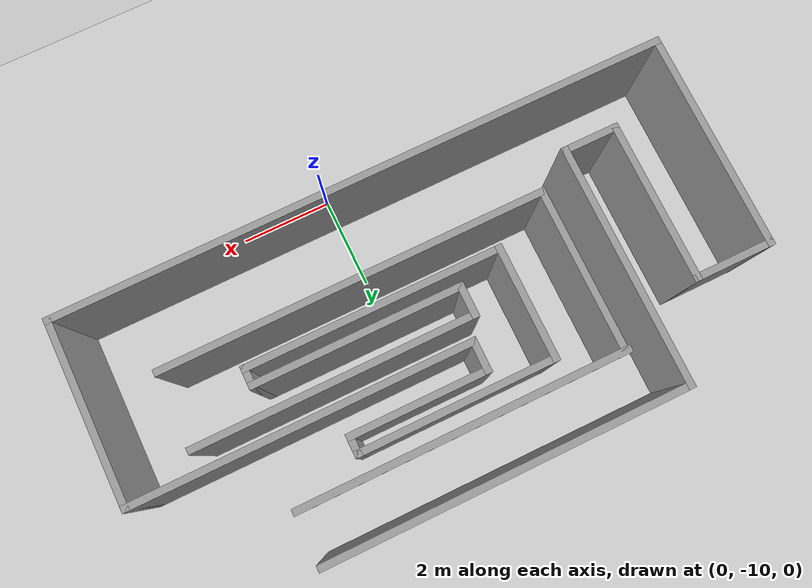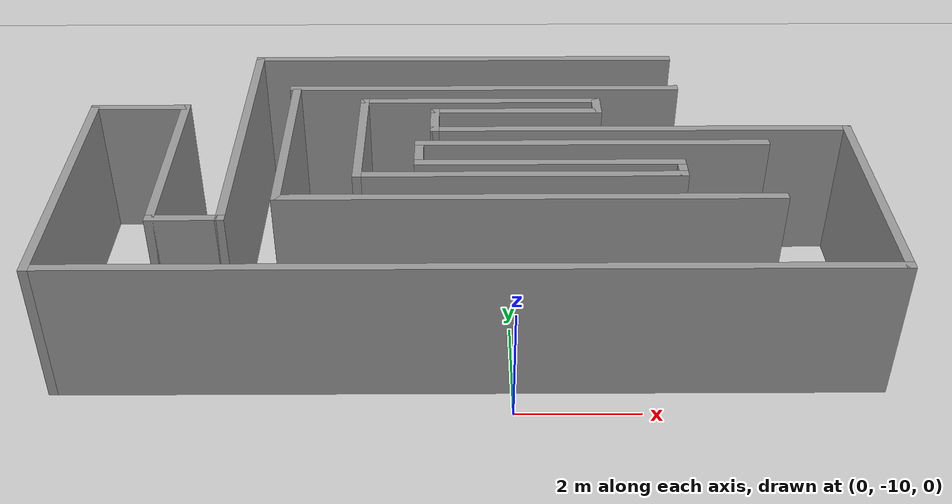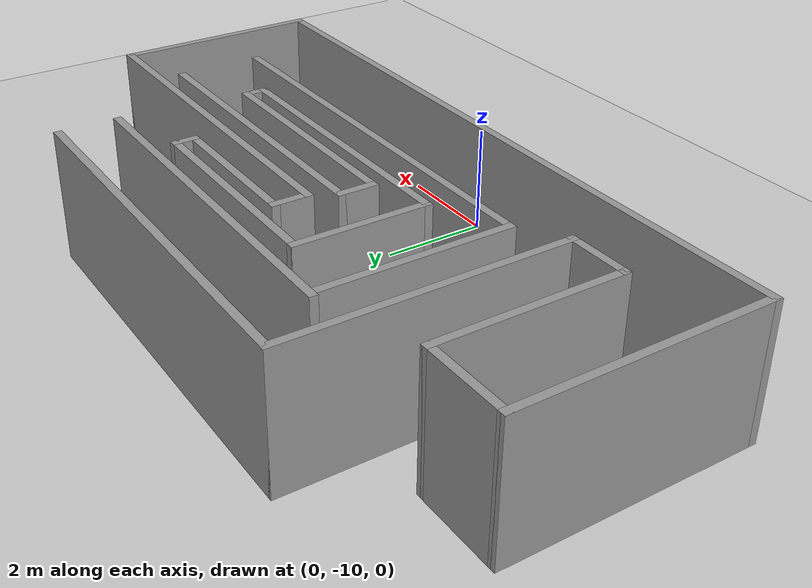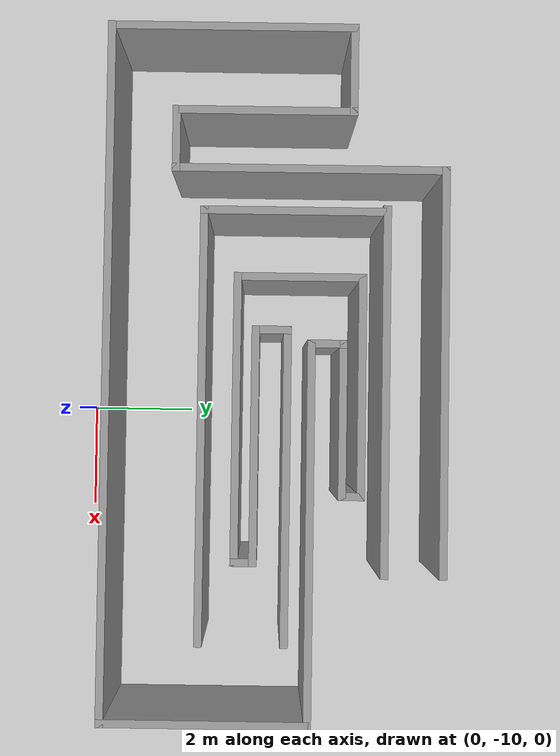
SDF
<sdf version="1.7">
 <world name="default">
  <light name="sun" type="directional">
   <pose>0 0 10 0 -0 0</pose>
   <diffuse>0.8 0.8 0.8 1</diffuse>
   <specular>0.2 0.2 0.2 1</specular>
   <attenuation>
    <range>1000</range>
    <constant>0.9</constant>
    <linear>0.01</linear>
    <quadratic>0.001</quadratic>
   </attenuation>
   <direction>-0.5 0.1 -0.9</direction>
   <spot><inner_angle>0</inner_angle><outer_angle>0</outer_angle><falloff>0</falloff></spot>
  </light>
  <model name="ground_plane">
   <static>1</static>
   <link name="link">
    <collision name="collision">
     <geometry><plane><normal>0 0 1</normal><size>100 100</size></plane></geometry>
     <surface>
      <contact><collide_bitmask>65535</collide_bitmask></contact>
      <friction><ode><mu>100</mu><mu2>50</mu2></ode></friction>
     </surface>
    </collision>
    <visual name="visual">
     <cast_shadows>0</cast_shadows>
     <geometry><plane><normal>0 0 1</normal><size>100 100</size></plane></geometry>
     <material>
      <script><uri>file://media/materials/scripts/gazebo.material</uri><name>Gazebo/Grey</name></script>
     </material>
    </visual>
   </link>
  </model>
  <gravity>0 0 -9.8</gravity>
  <magnetic_field>6e-06 2.3e-05 -4.2e-05</magnetic_field>
  <atmosphere type="adiabatic"/>
  <physics type="ode">
   <max_step_size>0.001</max_step_size>
   <real_time_factor>1</real_time_factor>
   <real_time_update_rate>1000</real_time_update_rate>
  </physics>
  <scene><ambient>0.4 0.4 0.4 1</ambient><background>0.7 0.7 0.7 1</background><shadows>1</shadows></scene>
  <spherical_coordinates>
   <surface_model>EARTH_WGS84</surface_model>
   <latitude_deg>0</latitude_deg>
   <longitude_deg>0</longitude_deg>
   <elevation>0</elevation>
   <heading_deg>0</heading_deg>
  </spherical_coordinates>
  <model name="maze_map">
   <pose>-0.71 -6.28332 0 0 -0 0</pose>
   <link name="Wall_0">
    <collision name="Wall_0_Collision">
     <geometry><box><size>3.5 0.15 2.5</size></box></geometry>
     <pose>0 0 1.25 0 -0 0</pose>
    </collision>
    <visual name="Wall_0_Visual">
     <pose>0 0 1.25 0 -0 0</pose>
     <geometry><box><size>3.5 0.15 2.5</size></box></geometry>
     <material>
      <script><uri>file://media/materials/scripts/gazebo.material</uri><name>Gazebo/Grey</name></script>
      <ambient>1 1 1 1</ambient>
     </material>
     <meta><layer>0</layer></meta>
    </visual>
    <pose>-3.05 0.3 0 0 -0 -1.5708</pose>
   </link>
   <link name="Wall_1">
    <collision name="Wall_1_Collision">
     <geometry><box><size>8.25 0.15 2.5</size></box></geometry>
     <pose>0 0 1.25 0 -0 0</pose>
    </collision>
    <visual name="Wall_1_Visual">
     <pose>0 0 1.25 0 -0 0</pose>
     <geometry><box><size>8.25 0.15 2.5</size></box></geometry>
     <material>
      <script><uri>file://media/materials/scripts/gazebo.material</uri><name>Gazebo/Grey</name></script>
      <ambient>1 1 1 1</ambient>
     </material>
     <meta><layer>0</layer></meta>
    </visual>
    <pose>1 -1.375 0 0 -0 0</pose>
   </link>
   <link name="Wall_10">
    <collision name="Wall_10_Collision">
     <geometry><box><size>0.5 0.15 2.5</size></box></geometry>
     <pose>0 0 1.25 0 -0 0</pose>
    </collision>
    <visual name="Wall_10_Visual">
     <pose>0 0 1.25 0 -0 0</pose>
     <geometry><box><size>0.5 0.15 2.5</size></box></geometry>
     <material>
      <script><uri>file://media/materials/scripts/gazebo.material</uri><name>Gazebo/Grey</name></script>
      <ambient>1 1 1 1</ambient>
     </material>
     <meta><layer>0</layer></meta>
    </visual>
    <pose>2.3 1.45 0 0 -0 -1.5708</pose>
   </link>
   <link name="Wall_11">
    <collision name="Wall_11_Collision">
     <geometry><box><size>3 0.15 2.5</size></box></geometry>
     <pose>0 0 1.25 0 -0 0</pose>
    </collision>
    <visual name="Wall_11_Visual">
     <pose>0 0 1.25 0 -0 0</pose>
     <geometry><box><size>3 0.15 2.5</size></box></geometry>
     <material>
      <script><uri>file://media/materials/scripts/gazebo.material</uri><name>Gazebo/Grey</name></script>
      <ambient>1 1 1 1</ambient>
     </material>
     <meta><layer>0</layer></meta>
    </visual>
    <pose>0.875 1.275 0 0 -0 3.14159</pose>
   </link>
   <link name="Wall_12">
    <collision name="Wall_12_Collision">
     <geometry><box><size>0.75 0.15 2.5</size></box></geometry>
     <pose>0 0 1.25 0 -0 0</pose>
    </collision>
    <visual name="Wall_12_Visual">
     <pose>0 0 1.25 0 -0 0</pose>
     <geometry><box><size>0.75 0.15 2.5</size></box></geometry>
     <material>
      <script><uri>file://media/materials/scripts/gazebo.material</uri><name>Gazebo/Grey</name></script>
      <ambient>1 1 1 1</ambient>
     </material>
     <meta><layer>0</layer></meta>
    </visual>
    <pose>-0.55 0.975 0 0 -0 -1.5708</pose>
   </link>
   <link name="Wall_13">
    <collision name="Wall_13_Collision">
     <geometry><box><size>7.25 0.15 2.5</size></box></geometry>
     <pose>0 0 1.25 0 -0 0</pose>
    </collision>
    <visual name="Wall_13_Visual">
     <pose>0 0 1.25 0 -0 0</pose>
     <geometry><box><size>7.25 0.15 2.5</size></box></geometry>
     <material>
      <script><uri>file://media/materials/scripts/gazebo.material</uri><name>Gazebo/Grey</name></script>
      <ambient>1 1 1 1</ambient>
     </material>
     <meta><layer>0</layer></meta>
    </visual>
    <pose>3 0.675 0 0 -0 0</pose>
   </link>
   <link name="Wall_14">
    <collision name="Wall_14_Collision">
     <geometry><box><size>4 0.15 2.5</size></box></geometry>
     <pose>0 0 1.25 0 -0 0</pose>
    </collision>
    <visual name="Wall_14_Visual">
     <pose>0 0 1.25 0 -0 0</pose>
     <geometry><box><size>4 0.15 2.5</size></box></geometry>
     <material>
      <script><uri>file://media/materials/scripts/gazebo.material</uri><name>Gazebo/Grey</name></script>
      <ambient>1 1 1 1</ambient>
     </material>
     <meta><layer>0</layer></meta>
    </visual>
    <pose>6.55 -1.25 0 0 -0 -1.5708</pose>
   </link>
   <link name="Wall_15">
    <collision name="Wall_15_Collision">
     <geometry><box><size>13.25 0.15 2.5</size></box></geometry>
     <pose>0 0 1.25 0 -0 0</pose>
    </collision>
    <visual name="Wall_15_Visual">
     <pose>0 0 1.25 0 -0 0</pose>
     <geometry><box><size>13.25 0.15 2.5</size></box></geometry>
     <material>
      <script><uri>file://media/materials/scripts/gazebo.material</uri><name>Gazebo/Grey</name></script>
      <ambient>1 1 1 1</ambient>
     </material>
     <meta><layer>0</layer></meta>
    </visual>
    <pose>0 -3.175 0 0 -0 3.14159</pose>
   </link>
   <link name="Wall_16">
    <collision name="Wall_16_Collision">
     <geometry><box><size>4.75 0.15 2.5</size></box></geometry>
     <pose>0 0 1.25 0 -0 0</pose>
    </collision>
    <visual name="Wall_16_Visual">
     <pose>0 0 1.25 0 -0 0</pose>
     <geometry><box><size>4.75 0.15 2.5</size></box></geometry>
     <material>
      <script><uri>file://media/materials/scripts/gazebo.material</uri><name>Gazebo/Grey</name></script>
      <ambient>1 1 1 1</ambient>
     </material>
     <meta><layer>0</layer></meta>
    </visual>
    <pose>-6.55 -0.875 0 0 -0 1.5708</pose>
   </link>
   <link name="Wall_17">
    <collision name="Wall_17_Collision">
     <geometry><box><size>1.75 0.15 2.5</size></box></geometry>
     <pose>0 0 1.25 0 -0 0</pose>
    </collision>
    <visual name="Wall_17_Visual">
     <pose>0 0 1.25 0 -0 0</pose>
     <geometry><box><size>1.75 0.15 2.5</size></box></geometry>
     <material>
      <script><uri>file://media/materials/scripts/gazebo.material</uri><name>Gazebo/Grey</name></script>
      <ambient>1 1 1 1</ambient>
     </material>
     <meta><layer>0</layer></meta>
    </visual>
    <pose>-5.75 1.425 0 0 -0 0</pose>
   </link>
   <link name="Wall_18">
    <collision name="Wall_18_Collision">
     <geometry><box><size>3.5 0.15 2.5</size></box></geometry>
     <pose>0 0 1.25 0 -0 0</pose>
    </collision>
    <visual name="Wall_18_Visual">
     <pose>0 0 1.25 0 -0 0</pose>
     <geometry><box><size>3.5 0.15 2.5</size></box></geometry>
     <material>
      <script><uri>file://media/materials/scripts/gazebo.material</uri><name>Gazebo/Grey</name></script>
      <ambient>1 1 1 1</ambient>
     </material>
     <meta><layer>0</layer></meta>
    </visual>
    <pose>-4.95 -0.25 0 0 -0 -1.5708</pose>
   </link>
   <link name="Wall_19">
    <collision name="Wall_19_Collision">
     <geometry><box><size>1.25 0.15 2.5</size></box></geometry>
     <pose>0 0 1.25 0 -0 0</pose>
    </collision>
    <visual name="Wall_19_Visual">
     <pose>0 0 1.25 0 -0 0</pose>
     <geometry><box><size>1.25 0.15 2.5</size></box></geometry>
     <material>
      <script><uri>file://media/materials/scripts/gazebo.material</uri><name>Gazebo/Grey</name></script>
      <ambient>1 1 1 1</ambient>
     </material>
     <meta><layer>0</layer></meta>
    </visual>
    <pose>-4.4 -1.925 0 0 -0 0</pose>
   </link>
   <link name="Wall_20">
    <collision name="Wall_20_Collision">
     <geometry><box><size>5.25 0.15 2.5</size></box></geometry>
     <pose>0 0 1.25 0 -0 0</pose>
    </collision>
    <visual name="Wall_20_Visual">
     <pose>0 0 1.25 0 -0 0</pose>
     <geometry><box><size>5.25 0.15 2.5</size></box></geometry>
     <material>
      <script><uri>file://media/materials/scripts/gazebo.material</uri><name>Gazebo/Grey</name></script>
      <ambient>1 1 1 1</ambient>
     </material>
     <meta><layer>0</layer></meta>
    </visual>
    <pose>-3.85 0.625 0 0 -0 1.5708</pose>
   </link>
   <link name="Wall_21">
    <collision name="Wall_21_Collision">
     <geometry><box><size>7.75 0.15 2.5</size></box></geometry>
     <pose>0 0 1.25 0 -0 0</pose>
    </collision>
    <visual name="Wall_21_Visual">
     <pose>0 0 1.25 0 -0 0</pose>
     <geometry><box><size>7.75 0.15 2.5</size></box></geometry>
     <material>
      <script><uri>file://media/materials/scripts/gazebo.material</uri><name>Gazebo/Grey</name></script>
      <ambient>1 1 1 1</ambient>
     </material>
     <meta><layer>0</layer></meta>
    </visual>
    <pose>-0.05 3.175 0 0 -0 0</pose>
   </link>
   <link name="Wall_23">
    <collision name="Wall_23_Collision">
     <geometry><box><size>7 0.15 2.5</size></box></geometry>
     <pose>0 0 1.25 0 -0 0</pose>
    </collision>
    <visual name="Wall_23_Visual">
     <pose>0 0 1.25 0 -0 0</pose>
     <geometry><box><size>7 0.15 2.5</size></box></geometry>
     <material>
      <script><uri>file://media/materials/scripts/gazebo.material</uri><name>Gazebo/Grey</name></script>
      <ambient>1 1 1 1</ambient>
     </material>
     <meta><layer>0</layer></meta>
    </visual>
    <pose>0.325 2.075 0 0 -0 3.14159</pose>
   </link>
   <link name="Wall_3">
    <collision name="Wall_3_Collision">
     <geometry><box><size>6 0.15 2.5</size></box></geometry>
     <pose>0 0 1.25 0 -0 0</pose>
    </collision>
    <visual name="Wall_3_Visual">
     <pose>0 0 1.25 0 -0 0</pose>
     <geometry><box><size>6 0.15 2.5</size></box></geometry>
     <material>
      <script><uri>file://media/materials/scripts/gazebo.material</uri><name>Gazebo/Grey</name></script>
      <ambient>1 1 1 1</ambient>
     </material>
     <meta><layer>0</layer></meta>
    </visual>
    <pose>2.125 0.225 0 0 -0 3.14159</pose>
   </link>
   <link name="Wall_4">
    <collision name="Wall_4_Collision">
     <geometry><box><size>0.75 0.15 2.5</size></box></geometry>
     <pose>0 0 1.25 0 -0 0</pose>
    </collision>
    <visual name="Wall_4_Visual">
     <pose>0 0 1.25 0 -0 0</pose>
     <geometry><box><size>0.75 0.15 2.5</size></box></geometry>
     <material>
      <script><uri>file://media/materials/scripts/gazebo.material</uri><name>Gazebo/Grey</name></script>
      <ambient>1 1 1 1</ambient>
     </material>
     <meta><layer>0</layer></meta>
    </visual>
    <pose>-0.8 -0.075 0 0 -0 -1.5708</pose>
   </link>
   <link name="Wall_5">
    <collision name="Wall_5_Collision">
     <geometry><box><size>4.5 0.15 2.5</size></box></geometry>
     <pose>0 0 1.25 0 -0 0</pose>
    </collision>
    <visual name="Wall_5_Visual">
     <pose>0 0 1.25 0 -0 0</pose>
     <geometry><box><size>4.5 0.15 2.5</size></box></geometry>
     <material>
      <script><uri>file://media/materials/scripts/gazebo.material</uri><name>Gazebo/Grey</name></script>
      <ambient>1 1 1 1</ambient>
     </material>
     <meta><layer>0</layer></meta>
    </visual>
    <pose>1.375 -0.375 0 0 -0 0</pose>
   </link>
   <link name="Wall_6">
    <collision name="Wall_6_Collision">
     <geometry><box><size>0.5 0.15 2.5</size></box></geometry>
     <pose>0 0 1.25 0 -0 0</pose>
    </collision>
    <visual name="Wall_6_Visual">
     <pose>0 0 1.25 0 -0 0</pose>
     <geometry><box><size>0.5 0.15 2.5</size></box></geometry>
     <material>
      <script><uri>file://media/materials/scripts/gazebo.material</uri><name>Gazebo/Grey</name></script>
      <ambient>1 1 1 1</ambient>
     </material>
     <meta><layer>0</layer></meta>
    </visual>
    <pose>3.55 -0.55 0 0 -0 -1.5708</pose>
   </link>
   <link name="Wall_7">
    <collision name="Wall_7_Collision">
     <geometry><box><size>5.5 0.15 2.5</size></box></geometry>
     <pose>0 0 1.25 0 -0 0</pose>
    </collision>
    <visual name="Wall_7_Visual">
     <pose>0 0 1.25 0 -0 0</pose>
     <geometry><box><size>5.5 0.15 2.5</size></box></geometry>
     <material>
      <script><uri>file://media/materials/scripts/gazebo.material</uri><name>Gazebo/Grey</name></script>
      <ambient>1 1 1 1</ambient>
     </material>
     <meta><layer>0</layer></meta>
    </visual>
    <pose>0.875 -0.725 0 0 -0 3.14159</pose>
   </link>
   <link name="Wall_8">
    <collision name="Wall_8_Collision">
     <geometry><box><size>2.5 0.15 2.5</size></box></geometry>
     <pose>0 0 1.25 0 -0 0</pose>
    </collision>
    <visual name="Wall_8_Visual">
     <pose>0 0 1.25 0 -0 0</pose>
     <geometry><box><size>2.5 0.15 2.5</size></box></geometry>
     <material>
      <script><uri>file://media/materials/scripts/gazebo.material</uri><name>Gazebo/Grey</name></script>
      <ambient>1 1 1 1</ambient>
     </material>
     <meta><layer>0</layer></meta>
    </visual>
    <pose>-1.8 0.45 0 0 -0 1.5708</pose>
   </link>
   <link name="Wall_9">
    <collision name="Wall_9_Collision">
     <geometry><box><size>4.25 0.15 2.5</size></box></geometry>
     <pose>0 0 1.25 0 -0 0</pose>
    </collision>
    <visual name="Wall_9_Visual">
     <pose>0 0 1.25 0 -0 0</pose>
     <geometry><box><size>4.25 0.15 2.5</size></box></geometry>
     <material>
      <script><uri>file://media/materials/scripts/gazebo.material</uri><name>Gazebo/Grey</name></script>
      <ambient>1 1 1 1</ambient>
     </material>
     <meta><layer>0</layer></meta>
    </visual>
    <pose>0.25 1.625 0 0 -0 0</pose>
   </link>
   <static>1</static>
  </model>
 </world>
</sdf>
